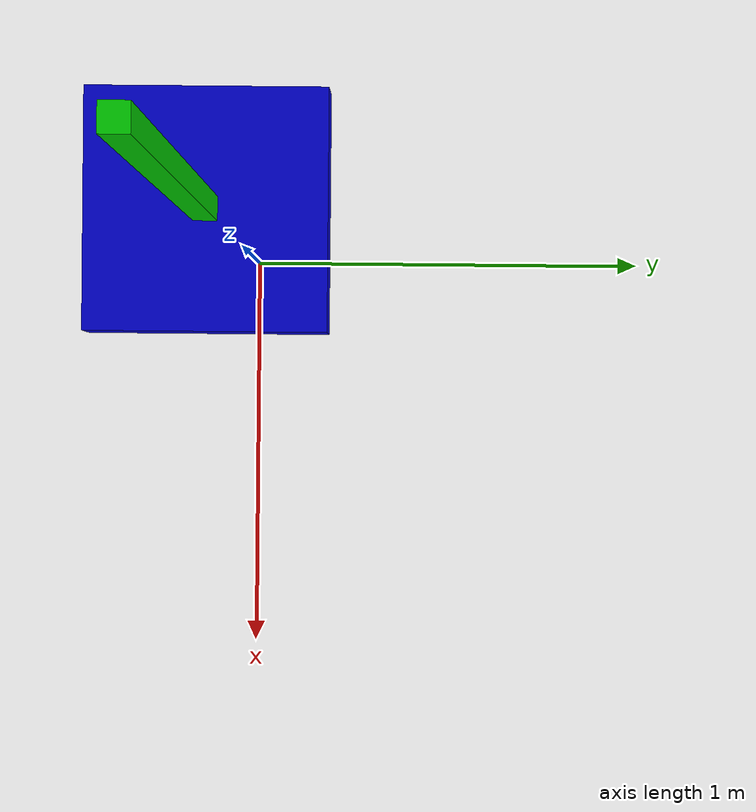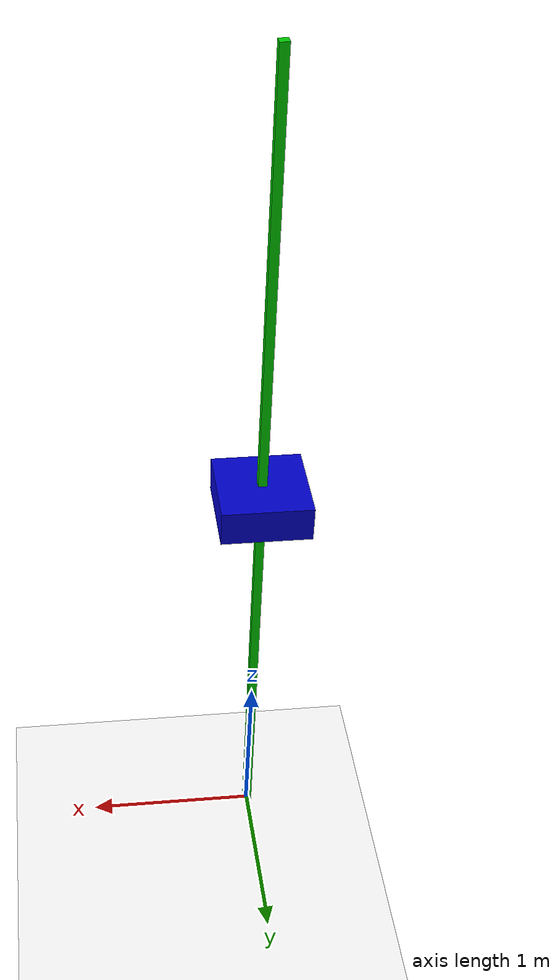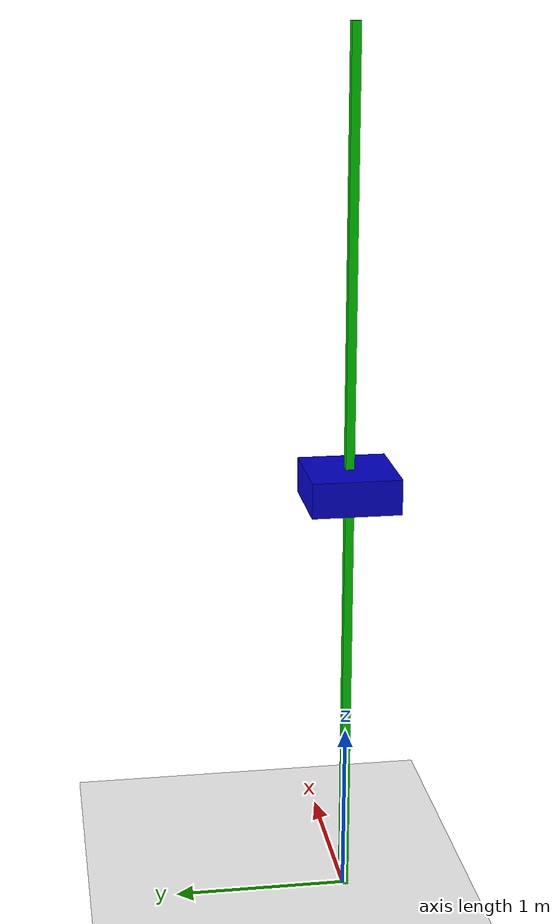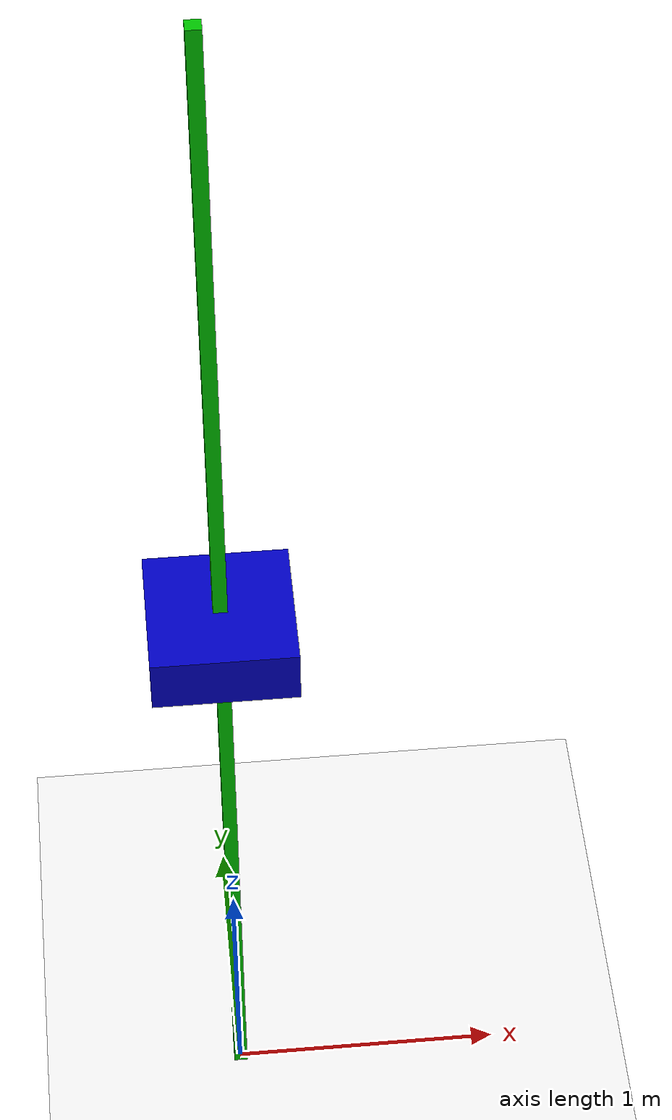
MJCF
<mujoco>
	<option gravity="0 0 -9.81">
		<flag contact="enable" />
	</option>
	<worldbody>
        <light diffuse=".5 .5 .5" pos="0 0 5" dir="0 0 -1" />
		<geom type="plane" size="20 20 0.1" rgba="1 1 1 1" />

        <body name="slideBar" pos="0 0 2.5" euler="0 0 0">
            <geom type="box" size="0.025 0.025 2.5" rgba="0 .8 0 1" />
            <inertial pos="0 0 0" mass="100" diaginertia="1.0 1.0 1.0" />
            <body name="cart" pos="0 0 0" euler="0 0 0">
                <joint name="slider_to_cart" type="slide" axis="0 0 1" pos="0 0 0" range="-2.5 2.5" />
                <geom type="box" size="0.25 0.25 0.1" rgba="0 0 .8 1" />
                <inertial pos="0 0 0" mass="1" diaginertia="1.0 1.0 1.0" />
            </body>
        </body>
	</worldbody>
    <actuator>
        <!-- Position actuator: kv=0.0 for MIT mode compatibility -->
        <position name="act_pos_slider_to_cart" joint="slider_to_cart"
                  kp="100.0" kv="0.0"
                  ctrlrange="-2 2" forcerange="-1000 1000"/>

        <!-- Velocity actuator -->
        <velocity name="act_vel_slider_to_cart" joint="slider_to_cart"
                  kv="10.0"
                  ctrlrange="-10 10" forcerange="-1000 1000"/>

        <!-- Torque actuator -->
        <motor name="act_tau_slider_to_cart" joint="slider_to_cart"
               ctrlrange="-1000 1000" forcerange="-1000 1000"/>
    </actuator>
    <contact>
        <exclude body1="slideBar" body2="cart" />
    </contact>
</mujoco>
